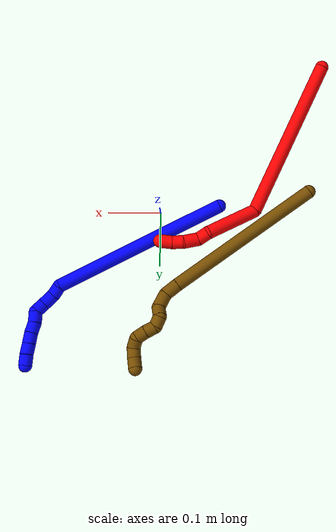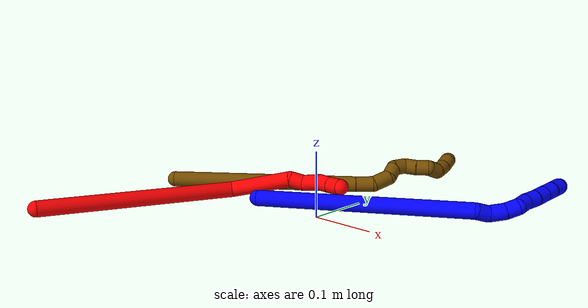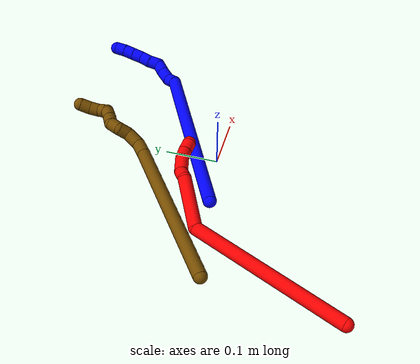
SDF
<sdf version="1.7">
 <world name="default">
  <model name="1">
   <static>0</static>
   <link name="1">
    <collision name="collision-cylinder-e_1_1_4">
     <pose>0.131686 0.093437 -0.040959 -1.98393 0.911658 -1.28727</pose>
     <geometry><cylinder><radius>0.0125</radius><length>0.333163</length></cylinder></geometry>
     <surface>
      <friction><ode><mu>1.16</mu><mu2>1.16</mu2><slip1>0</slip1><slip2>0</slip2></ode></friction>
      <contact><ode><kp>1e+06</kp><kd>1</kd><max_vel>0</max_vel><min_depth>0.001</min_depth></ode></contact>
     </surface>
    </collision>
    <visual name="visual-cylinder-e_1_1_4">
     <pose>0.131686 0.093437 -0.040959 -1.98393 0.911658 -1.28727</pose>
     <geometry><cylinder><radius>0.0125</radius><length>0.333163</length></cylinder></geometry>
     <material><ambient>0 0 1 1</ambient></material>
    </visual>
    <collision name="collision-cylinder-e_2_4_5">
     <pose>0.266919 0.196053 -0.085829 -1.9736 0.34158 -0.510544</pose>
     <geometry><cylinder><radius>0.0125</radius><length>0.021177</length></cylinder></geometry>
     <surface>
      <friction><ode><mu>1.16</mu><mu2>1.16</mu2><slip1>0</slip1><slip2>0</slip2></ode></friction>
      <contact><ode><kp>1e+06</kp><kd>1</kd><max_vel>0</max_vel><min_depth>0.001</min_depth></ode></contact>
     </surface>
    </collision>
    <visual name="visual-cylinder-e_2_4_5">
     <pose>0.266919 0.196053 -0.085829 -1.9736 0.34158 -0.510544</pose>
     <geometry><cylinder><radius>0.0125</radius><length>0.021177</length></cylinder></geometry>
     <material><ambient>0 0 1 1</ambient></material>
    </visual>
    <collision name="collision-cylinder-e_3_5_6">
     <pose>0.278493 0.215205 -0.090409 -1.63775 0.676567 -0.719621</pose>
     <geometry><cylinder><radius>0.0125</radius><length>0.025641</length></cylinder></geometry>
     <surface>
      <friction><ode><mu>1.16</mu><mu2>1.16</mu2><slip1>0</slip1><slip2>0</slip2></ode></friction>
      <contact><ode><kp>1e+06</kp><kd>1</kd><max_vel>0</max_vel><min_depth>0.001</min_depth></ode></contact>
     </surface>
    </collision>
    <visual name="visual-cylinder-e_3_5_6">
     <pose>0.278493 0.215205 -0.090409 -1.63775 0.676567 -0.719621</pose>
     <geometry><cylinder><radius>0.0125</radius><length>0.025641</length></cylinder></geometry>
     <material><ambient>0 0 1 1</ambient></material>
    </visual>
    <collision name="collision-cylinder-e_4_6_7">
     <pose>0.293274 0.232394 -0.089522 -1.35852 0.741122 -0.607951</pose>
     <geometry><cylinder><radius>0.0125</radius><length>0.020011</length></cylinder></geometry>
     <surface>
      <friction><ode><mu>1.16</mu><mu2>1.16</mu2><slip1>0</slip1><slip2>0</slip2></ode></friction>
      <contact><ode><kp>1e+06</kp><kd>1</kd><max_vel>0</max_vel><min_depth>0.001</min_depth></ode></contact>
     </surface>
    </collision>
    <visual name="visual-cylinder-e_4_6_7">
     <pose>0.293274 0.232394 -0.089522 -1.35852 0.741122 -0.607951</pose>
     <geometry><cylinder><radius>0.0125</radius><length>0.020011</length></cylinder></geometry>
     <material><ambient>0 0 1 1</ambient></material>
    </visual>
    <collision name="collision-cylinder-e_5_7_8">
     <pose>0.2998 0.249372 -0.085795 -1.35187 -0.022868 0.01834</pose>
     <geometry><cylinder><radius>0.0125</radius><length>0.020008</length></cylinder></geometry>
     <surface>
      <friction><ode><mu>1.16</mu><mu2>1.16</mu2><slip1>0</slip1><slip2>0</slip2></ode></friction>
      <contact><ode><kp>1e+06</kp><kd>1</kd><max_vel>0</max_vel><min_depth>0.001</min_depth></ode></contact>
     </surface>
    </collision>
    <visual name="visual-cylinder-e_5_7_8">
     <pose>0.2998 0.249372 -0.085795 -1.35187 -0.022868 0.01834</pose>
     <geometry><cylinder><radius>0.0125</radius><length>0.020008</length></cylinder></geometry>
     <material><ambient>0 0 1 1</ambient></material>
    </visual>
    <collision name="collision-cylinder-e_6_8_9">
     <pose>0.301806 0.268829 -0.082603 -1.46599 0.225309 -0.203013</pose>
     <geometry><cylinder><radius>0.0125</radius><length>0.02</length></cylinder></geometry>
     <surface>
      <friction><ode><mu>1.16</mu><mu2>1.16</mu2><slip1>0</slip1><slip2>0</slip2></ode></friction>
      <contact><ode><kp>1e+06</kp><kd>1</kd><max_vel>0</max_vel><min_depth>0.001</min_depth></ode></contact>
     </surface>
    </collision>
    <visual name="visual-cylinder-e_6_8_9">
     <pose>0.301806 0.268829 -0.082603 -1.46599 0.225309 -0.203013</pose>
     <geometry><cylinder><radius>0.0125</radius><length>0.02</length></cylinder></geometry>
     <material><ambient>0 0 1 1</ambient></material>
    </visual>
    <collision name="collision-cylinder-e_7_9_10">
     <pose>0.305004 0.28834 -0.079938 -1.40471 0.096594 -0.081768</pose>
     <geometry><cylinder><radius>0.0125</radius><length>0.02</length></cylinder></geometry>
     <surface>
      <friction><ode><mu>1.16</mu><mu2>1.16</mu2><slip1>0</slip1><slip2>0</slip2></ode></friction>
      <contact><ode><kp>1e+06</kp><kd>1</kd><max_vel>0</max_vel><min_depth>0.001</min_depth></ode></contact>
     </surface>
    </collision>
    <visual name="visual-cylinder-e_7_9_10">
     <pose>0.305004 0.28834 -0.079938 -1.40471 0.096594 -0.081768</pose>
     <geometry><cylinder><radius>0.0125</radius><length>0.02</length></cylinder></geometry>
     <material><ambient>0 0 1 1</ambient></material>
    </visual>
    <collision name="collision-cylinder-e_8_10_11">
     <pose>0.307143 0.307946 -0.076622 -1.40182 0.117688 -0.099343</pose>
     <geometry><cylinder><radius>0.0125</radius><length>0.02</length></cylinder></geometry>
     <surface>
      <friction><ode><mu>1.16</mu><mu2>1.16</mu2><slip1>0</slip1><slip2>0</slip2></ode></friction>
      <contact><ode><kp>1e+06</kp><kd>1</kd><max_vel>0</max_vel><min_depth>0.001</min_depth></ode></contact>
     </surface>
    </collision>
    <visual name="visual-cylinder-e_8_10_11">
     <pose>0.307143 0.307946 -0.076622 -1.40182 0.117688 -0.099343</pose>
     <geometry><cylinder><radius>0.0125</radius><length>0.02</length></cylinder></geometry>
     <material><ambient>0 0 1 1</ambient></material>
    </visual>
    <collision name="collision-cylinder-e_9_11_2">
     <pose>0.308352 0.32765 -0.073655 -1.44071 0.003524 -0.003093</pose>
     <geometry><cylinder><radius>0.0125</radius><length>0.02</length></cylinder></geometry>
     <surface>
      <friction><ode><mu>1.16</mu><mu2>1.16</mu2><slip1>0</slip1><slip2>0</slip2></ode></friction>
      <contact><ode><kp>1e+06</kp><kd>1</kd><max_vel>0</max_vel><min_depth>0.001</min_depth></ode></contact>
     </surface>
    </collision>
    <visual name="visual-cylinder-e_9_11_2">
     <pose>0.308352 0.32765 -0.073655 -1.44071 0.003524 -0.003093</pose>
     <geometry><cylinder><radius>0.0125</radius><length>0.02</length></cylinder></geometry>
     <material><ambient>0 0 1 1</ambient></material>
    </visual>
    <collision name="collision-sphere-2">
     <pose>0.308388 0.337566 -0.072358 0 -0 0</pose>
     <geometry><sphere><radius>0.0125</radius></sphere></geometry>
     <surface>
      <friction><ode><mu>1.16</mu><mu2>1.16</mu2><slip1>0</slip1><slip2>0</slip2></ode></friction>
      <contact><ode><kp>1e+06</kp><kd>1</kd><max_vel>0</max_vel><min_depth>0.001</min_depth></ode></contact>
     </surface>
    </collision>
    <visual name="visual-sphere-2">
     <pose>0.308388 0.337566 -0.072358 0 -0 0</pose>
     <geometry><sphere><radius>0.0125</radius></sphere></geometry>
     <material><ambient>0 0 1 1</ambient></material>
    </visual>
    <collision name="collision-sphere-11">
     <pose>0.308317 0.317735 -0.074952 0 -0 0</pose>
     <geometry><sphere><radius>0.0125</radius></sphere></geometry>
     <surface>
      <friction><ode><mu>1.16</mu><mu2>1.16</mu2><slip1>0</slip1><slip2>0</slip2></ode></friction>
      <contact><ode><kp>1e+06</kp><kd>1</kd><max_vel>0</max_vel><min_depth>0.001</min_depth></ode></contact>
     </surface>
    </collision>
    <visual name="visual-sphere-11">
     <pose>0.308317 0.317735 -0.074952 0 -0 0</pose>
     <geometry><sphere><radius>0.0125</radius></sphere></geometry>
     <material><ambient>0 0 1 1</ambient></material>
    </visual>
    <collision name="collision-sphere-10">
     <pose>0.305969 0.298156 -0.078292 0 -0 0</pose>
     <geometry><sphere><radius>0.0125</radius></sphere></geometry>
     <surface>
      <friction><ode><mu>1.16</mu><mu2>1.16</mu2><slip1>0</slip1><slip2>0</slip2></ode></friction>
      <contact><ode><kp>1e+06</kp><kd>1</kd><max_vel>0</max_vel><min_depth>0.001</min_depth></ode></contact>
     </surface>
    </collision>
    <visual name="visual-sphere-10">
     <pose>0.305969 0.298156 -0.078292 0 -0 0</pose>
     <geometry><sphere><radius>0.0125</radius></sphere></geometry>
     <material><ambient>0 0 1 1</ambient></material>
    </visual>
    <collision name="collision-sphere-9">
     <pose>0.30404 0.278523 -0.081583 0 -0 0</pose>
     <geometry><sphere><radius>0.0125</radius></sphere></geometry>
     <surface>
      <friction><ode><mu>1.16</mu><mu2>1.16</mu2><slip1>0</slip1><slip2>0</slip2></ode></friction>
      <contact><ode><kp>1e+06</kp><kd>1</kd><max_vel>0</max_vel><min_depth>0.001</min_depth></ode></contact>
     </surface>
    </collision>
    <visual name="visual-sphere-9">
     <pose>0.30404 0.278523 -0.081583 0 -0 0</pose>
     <geometry><sphere><radius>0.0125</radius></sphere></geometry>
     <material><ambient>0 0 1 1</ambient></material>
    </visual>
    <collision name="collision-sphere-4">
     <pose>0.263372 0.186875 -0.081918 0 -0 0</pose>
     <geometry><sphere><radius>0.0125</radius></sphere></geometry>
     <surface>
      <friction><ode><mu>1.16</mu><mu2>1.16</mu2><slip1>0</slip1><slip2>0</slip2></ode></friction>
      <contact><ode><kp>1e+06</kp><kd>1</kd><max_vel>0</max_vel><min_depth>0.001</min_depth></ode></contact>
     </surface>
    </collision>
    <visual name="visual-sphere-4">
     <pose>0.263372 0.186875 -0.081918 0 -0 0</pose>
     <geometry><sphere><radius>0.0125</radius></sphere></geometry>
     <material><ambient>0 0 1 1</ambient></material>
    </visual>
    <collision name="collision-sphere-1">
     <geometry><sphere><radius>0.0125</radius></sphere></geometry>
     <surface>
      <friction><ode><mu>1.16</mu><mu2>1.16</mu2><slip1>0</slip1><slip2>0</slip2></ode></friction>
      <contact><ode><kp>1e+06</kp><kd>1</kd><max_vel>0</max_vel><min_depth>0.001</min_depth></ode></contact>
     </surface>
    </collision>
    <visual name="visual-sphere-1">
     <geometry><sphere><radius>0.0125</radius></sphere></geometry>
     <material><ambient>0 0 1 1</ambient></material>
    </visual>
    <collision name="collision-sphere-8">
     <pose>0.299572 0.259135 -0.083623 0 -0 0</pose>
     <geometry><sphere><radius>0.0125</radius></sphere></geometry>
     <surface>
      <friction><ode><mu>1.16</mu><mu2>1.16</mu2><slip1>0</slip1><slip2>0</slip2></ode></friction>
      <contact><ode><kp>1e+06</kp><kd>1</kd><max_vel>0</max_vel><min_depth>0.001</min_depth></ode></contact>
     </surface>
    </collision>
    <visual name="visual-sphere-8">
     <pose>0.299572 0.259135 -0.083623 0 -0 0</pose>
     <geometry><sphere><radius>0.0125</radius></sphere></geometry>
     <material><ambient>0 0 1 1</ambient></material>
    </visual>
    <collision name="collision-sphere-5">
     <pose>0.270466 0.205231 -0.08974 0 -0 0</pose>
     <geometry><sphere><radius>0.0125</radius></sphere></geometry>
     <surface>
      <friction><ode><mu>1.16</mu><mu2>1.16</mu2><slip1>0</slip1><slip2>0</slip2></ode></friction>
      <contact><ode><kp>1e+06</kp><kd>1</kd><max_vel>0</max_vel><min_depth>0.001</min_depth></ode></contact>
     </surface>
    </collision>
    <visual name="visual-sphere-5">
     <pose>0.270466 0.205231 -0.08974 0 -0 0</pose>
     <geometry><sphere><radius>0.0125</radius></sphere></geometry>
     <material><ambient>0 0 1 1</ambient></material>
    </visual>
    <collision name="collision-sphere-6">
     <pose>0.28652 0.225179 -0.091077 0 -0 0</pose>
     <geometry><sphere><radius>0.0125</radius></sphere></geometry>
     <surface>
      <friction><ode><mu>1.16</mu><mu2>1.16</mu2><slip1>0</slip1><slip2>0</slip2></ode></friction>
      <contact><ode><kp>1e+06</kp><kd>1</kd><max_vel>0</max_vel><min_depth>0.001</min_depth></ode></contact>
     </surface>
    </collision>
    <visual name="visual-sphere-6">
     <pose>0.28652 0.225179 -0.091077 0 -0 0</pose>
     <geometry><sphere><radius>0.0125</radius></sphere></geometry>
     <material><ambient>0 0 1 1</ambient></material>
    </visual>
    <collision name="collision-sphere-7">
     <pose>0.300029 0.239609 -0.087967 0 -0 0</pose>
     <geometry><sphere><radius>0.0125</radius></sphere></geometry>
     <surface>
      <friction><ode><mu>1.16</mu><mu2>1.16</mu2><slip1>0</slip1><slip2>0</slip2></ode></friction>
      <contact><ode><kp>1e+06</kp><kd>1</kd><max_vel>0</max_vel><min_depth>0.001</min_depth></ode></contact>
     </surface>
    </collision>
    <visual name="visual-sphere-7">
     <pose>0.300029 0.239609 -0.087967 0 -0 0</pose>
     <geometry><sphere><radius>0.0125</radius></sphere></geometry>
     <material><ambient>0 0 1 1</ambient></material>
    </visual>
    <inertial>
     <pose>0.185959 0.14859 -0.055092 0 -0 0</pose>
     <mass>0.5</mass>
     <inertia>
      <ixx>-0.001258</ixx>
      <ixy>0</ixy>
      <ixz>0</ixz>
      <iyy>1e-05</iyy>
      <iyz>0</iyz>
      <izz>-0.004203</izz>
     </inertia>
    </inertial>
   </link>
   <pose>-0.109823 -0.014762 0.011486 -0.044342 -0.350006 -0.099539</pose>
  </model>
  <model name="2">
   <static>0</static>
   <link name="2">
    <collision name="collision-cylinder-e_1_1_4">
     <pose>0.009948 -0.061134 -0.138856 2.72686 0.065473 0.308833</pose>
     <geometry><cylinder><radius>0.0125</radius><length>0.304088</length></cylinder></geometry>
     <surface>
      <friction><ode><mu>1.16</mu><mu2>1.16</mu2><slip1>0</slip1><slip2>0</slip2></ode></friction>
      <contact><ode><kp>1e+06</kp><kd>1</kd><max_vel>0</max_vel><min_depth>0.001</min_depth></ode></contact>
     </surface>
    </collision>
    <visual name="visual-cylinder-e_1_1_4">
     <pose>0.009948 -0.061134 -0.138856 2.72686 0.065473 0.308833</pose>
     <geometry><cylinder><radius>0.0125</radius><length>0.304088</length></cylinder></geometry>
     <material><ambient>1 0 0 1</ambient></material>
    </visual>
    <collision name="collision-cylinder-e_2_4_5">
     <pose>0.03818 -0.110746 -0.323405 -2.89459 0.370146 -1.97062</pose>
     <geometry><cylinder><radius>0.0125</radius><length>0.101091</length></cylinder></geometry>
     <surface>
      <friction><ode><mu>1.16</mu><mu2>1.16</mu2><slip1>0</slip1><slip2>0</slip2></ode></friction>
      <contact><ode><kp>1e+06</kp><kd>1</kd><max_vel>0</max_vel><min_depth>0.001</min_depth></ode></contact>
     </surface>
    </collision>
    <visual name="visual-cylinder-e_2_4_5">
     <pose>0.03818 -0.110746 -0.323405 -2.89459 0.370146 -1.97062</pose>
     <geometry><cylinder><radius>0.0125</radius><length>0.101091</length></cylinder></geometry>
     <material><ambient>1 0 0 1</ambient></material>
    </visual>
    <collision name="collision-cylinder-e_3_5_6">
     <pose>0.063192 -0.10125 -0.377853 2.91427 0.642512 2.4807</pose>
     <geometry><cylinder><radius>0.0125</radius><length>0.022451</length></cylinder></geometry>
     <surface>
      <friction><ode><mu>1.16</mu><mu2>1.16</mu2><slip1>0</slip1><slip2>0</slip2></ode></friction>
      <contact><ode><kp>1e+06</kp><kd>1</kd><max_vel>0</max_vel><min_depth>0.001</min_depth></ode></contact>
     </surface>
    </collision>
    <visual name="visual-cylinder-e_3_5_6">
     <pose>0.063192 -0.10125 -0.377853 2.91427 0.642512 2.4807</pose>
     <geometry><cylinder><radius>0.0125</radius><length>0.022451</length></cylinder></geometry>
     <material><ambient>1 0 0 1</ambient></material>
    </visual>
    <collision name="collision-cylinder-e_4_6_7">
     <pose>0.077637 -0.097899 -0.397832 -2.6948 0.555217 -1.79547</pose>
     <geometry><cylinder><radius>0.0125</radius><length>0.029288</length></cylinder></geometry>
     <surface>
      <friction><ode><mu>1.16</mu><mu2>1.16</mu2><slip1>0</slip1><slip2>0</slip2></ode></friction>
      <contact><ode><kp>1e+06</kp><kd>1</kd><max_vel>0</max_vel><min_depth>0.001</min_depth></ode></contact>
     </surface>
    </collision>
    <visual name="visual-cylinder-e_4_6_7">
     <pose>0.077637 -0.097899 -0.397832 -2.6948 0.555217 -1.79547</pose>
     <geometry><cylinder><radius>0.0125</radius><length>0.029288</length></cylinder></geometry>
     <material><ambient>1 0 0 1</ambient></material>
    </visual>
    <collision name="collision-cylinder-e_5_7_8">
     <pose>0.093059 -0.089214 -0.414996 -2.6336 0.847512 -2.09717</pose>
     <geometry><cylinder><radius>0.0125</radius><length>0.020548</length></cylinder></geometry>
     <surface>
      <friction><ode><mu>1.16</mu><mu2>1.16</mu2><slip1>0</slip1><slip2>0</slip2></ode></friction>
      <contact><ode><kp>1e+06</kp><kd>1</kd><max_vel>0</max_vel><min_depth>0.001</min_depth></ode></contact>
     </surface>
    </collision>
    <visual name="visual-cylinder-e_5_7_8">
     <pose>0.093059 -0.089214 -0.414996 -2.6336 0.847512 -2.09717</pose>
     <geometry><cylinder><radius>0.0125</radius><length>0.020548</length></cylinder></geometry>
     <material><ambient>1 0 0 1</ambient></material>
    </visual>
    <collision name="collision-cylinder-e_6_8_2">
     <pose>0.108799 -0.080595 -0.426778 -2.40366 0.794465 -1.65227</pose>
     <geometry><cylinder><radius>0.0125</radius><length>0.022533</length></cylinder></geometry>
     <surface>
      <friction><ode><mu>1.16</mu><mu2>1.16</mu2><slip1>0</slip1><slip2>0</slip2></ode></friction>
      <contact><ode><kp>1e+06</kp><kd>1</kd><max_vel>0</max_vel><min_depth>0.001</min_depth></ode></contact>
     </surface>
    </collision>
    <visual name="visual-cylinder-e_6_8_2">
     <pose>0.108799 -0.080595 -0.426778 -2.40366 0.794465 -1.65227</pose>
     <geometry><cylinder><radius>0.0125</radius><length>0.022533</length></cylinder></geometry>
     <material><ambient>1 0 0 1</ambient></material>
    </visual>
    <collision name="collision-sphere-2">
     <pose>0.116838 -0.075285 -0.432618 0 -0 0</pose>
     <geometry><sphere><radius>0.0125</radius></sphere></geometry>
     <surface>
      <friction><ode><mu>1.16</mu><mu2>1.16</mu2><slip1>0</slip1><slip2>0</slip2></ode></friction>
      <contact><ode><kp>1e+06</kp><kd>1</kd><max_vel>0</max_vel><min_depth>0.001</min_depth></ode></contact>
     </surface>
    </collision>
    <visual name="visual-sphere-2">
     <pose>0.116838 -0.075285 -0.432618 0 -0 0</pose>
     <geometry><sphere><radius>0.0125</radius></sphere></geometry>
     <material><ambient>1 0 0 1</ambient></material>
    </visual>
    <collision name="collision-sphere-4">
     <pose>0.019895 -0.122267 -0.277713 0 -0 0</pose>
     <geometry><sphere><radius>0.0125</radius></sphere></geometry>
     <surface>
      <friction><ode><mu>1.16</mu><mu2>1.16</mu2><slip1>0</slip1><slip2>0</slip2></ode></friction>
      <contact><ode><kp>1e+06</kp><kd>1</kd><max_vel>0</max_vel><min_depth>0.001</min_depth></ode></contact>
     </surface>
    </collision>
    <visual name="visual-sphere-4">
     <pose>0.019895 -0.122267 -0.277713 0 -0 0</pose>
     <geometry><sphere><radius>0.0125</radius></sphere></geometry>
     <material><ambient>1 0 0 1</ambient></material>
    </visual>
    <collision name="collision-sphere-1">
     <geometry><sphere><radius>0.0125</radius></sphere></geometry>
     <surface>
      <friction><ode><mu>1.16</mu><mu2>1.16</mu2><slip1>0</slip1><slip2>0</slip2></ode></friction>
      <contact><ode><kp>1e+06</kp><kd>1</kd><max_vel>0</max_vel><min_depth>0.001</min_depth></ode></contact>
     </surface>
    </collision>
    <visual name="visual-sphere-1">
     <geometry><sphere><radius>0.0125</radius></sphere></geometry>
     <material><ambient>1 0 0 1</ambient></material>
    </visual>
    <collision name="collision-sphere-8">
     <pose>0.10076 -0.085906 -0.420937 0 -0 0</pose>
     <geometry><sphere><radius>0.0125</radius></sphere></geometry>
     <surface>
      <friction><ode><mu>1.16</mu><mu2>1.16</mu2><slip1>0</slip1><slip2>0</slip2></ode></friction>
      <contact><ode><kp>1e+06</kp><kd>1</kd><max_vel>0</max_vel><min_depth>0.001</min_depth></ode></contact>
     </surface>
    </collision>
    <visual name="visual-sphere-8">
     <pose>0.10076 -0.085906 -0.420937 0 -0 0</pose>
     <geometry><sphere><radius>0.0125</radius></sphere></geometry>
     <material><ambient>1 0 0 1</ambient></material>
    </visual>
    <collision name="collision-sphere-5">
     <pose>0.056465 -0.099225 -0.369097 0 -0 0</pose>
     <geometry><sphere><radius>0.0125</radius></sphere></geometry>
     <surface>
      <friction><ode><mu>1.16</mu><mu2>1.16</mu2><slip1>0</slip1><slip2>0</slip2></ode></friction>
      <contact><ode><kp>1e+06</kp><kd>1</kd><max_vel>0</max_vel><min_depth>0.001</min_depth></ode></contact>
     </surface>
    </collision>
    <visual name="visual-sphere-5">
     <pose>0.056465 -0.099225 -0.369097 0 -0 0</pose>
     <geometry><sphere><radius>0.0125</radius></sphere></geometry>
     <material><ambient>1 0 0 1</ambient></material>
    </visual>
    <collision name="collision-sphere-6">
     <pose>0.069918 -0.103276 -0.386609 0 -0 0</pose>
     <geometry><sphere><radius>0.0125</radius></sphere></geometry>
     <surface>
      <friction><ode><mu>1.16</mu><mu2>1.16</mu2><slip1>0</slip1><slip2>0</slip2></ode></friction>
      <contact><ode><kp>1e+06</kp><kd>1</kd><max_vel>0</max_vel><min_depth>0.001</min_depth></ode></contact>
     </surface>
    </collision>
    <visual name="visual-sphere-6">
     <pose>0.069918 -0.103276 -0.386609 0 -0 0</pose>
     <geometry><sphere><radius>0.0125</radius></sphere></geometry>
     <material><ambient>1 0 0 1</ambient></material>
    </visual>
    <collision name="collision-sphere-7">
     <pose>0.085357 -0.092522 -0.409054 0 -0 0</pose>
     <geometry><sphere><radius>0.0125</radius></sphere></geometry>
     <surface>
      <friction><ode><mu>1.16</mu><mu2>1.16</mu2><slip1>0</slip1><slip2>0</slip2></ode></friction>
      <contact><ode><kp>1e+06</kp><kd>1</kd><max_vel>0</max_vel><min_depth>0.001</min_depth></ode></contact>
     </surface>
    </collision>
    <visual name="visual-sphere-7">
     <pose>0.085357 -0.092522 -0.409054 0 -0 0</pose>
     <geometry><sphere><radius>0.0125</radius></sphere></geometry>
     <material><ambient>1 0 0 1</ambient></material>
    </visual>
    <inertial>
     <pose>0.029882 -0.07715 -0.226394 0 -0 0</pose>
     <mass>0.5</mass>
     <inertia>
      <ixx>0.002846</ixx>
      <ixy>0</ixy>
      <ixz>0</ixz>
      <iyy>-0.001361</iyy>
      <iyz>0</iyz>
      <izz>0.000698</izz>
     </inertia>
    </inertial>
   </link>
   <pose>-0.302105 -0.284244 0.01348 2.03114 0.689516 -0.345624</pose>
  </model>
  <model name="12">
   <static>0</static>
   <link name="12">
    <collision name="collision-cylinder-e_1_1_4">
     <pose>0.058474 0.122884 0.064781 -1.08565 0.398427 -0.242398</pose>
     <geometry><cylinder><radius>0.0125</radius><length>0.301438</length></cylinder></geometry>
     <surface>
      <friction><ode><mu>1.16</mu><mu2>1.16</mu2><slip1>0</slip1><slip2>0</slip2></ode></friction>
      <contact><ode><kp>1e+06</kp><kd>1</kd><max_vel>0</max_vel><min_depth>0.001</min_depth></ode></contact>
     </surface>
    </collision>
    <visual name="visual-cylinder-e_1_1_4">
     <pose>0.058474 0.122884 0.064781 -1.08565 0.398427 -0.242398</pose>
     <geometry><cylinder><radius>0.0125</radius><length>0.301438</length></cylinder></geometry>
     <material><ambient>0.466667 0.301961 0 1</ambient></material>
    </visual>
    <collision name="collision-cylinder-e_2_4_5">
     <pose>0.123091 0.25699 0.136069 -1.04536 0.442219 -0.257574</pose>
     <geometry><cylinder><radius>0.0125</radius><length>0.028708</length></cylinder></geometry>
     <surface>
      <friction><ode><mu>1.16</mu><mu2>1.16</mu2><slip1>0</slip1><slip2>0</slip2></ode></friction>
      <contact><ode><kp>1e+06</kp><kd>1</kd><max_vel>0</max_vel><min_depth>0.001</min_depth></ode></contact>
     </surface>
    </collision>
    <visual name="visual-cylinder-e_2_4_5">
     <pose>0.123091 0.25699 0.136069 -1.04536 0.442219 -0.257574</pose>
     <geometry><cylinder><radius>0.0125</radius><length>0.028708</length></cylinder></geometry>
     <material><ambient>0.466667 0.301961 0 1</ambient></material>
    </visual>
    <collision name="collision-cylinder-e_3_5_6">
     <pose>0.140122 0.274085 0.150198 -0.656441 0.847074 -0.304665</pose>
     <geometry><cylinder><radius>0.0125</radius><length>0.029059</length></cylinder></geometry>
     <surface>
      <friction><ode><mu>1.16</mu><mu2>1.16</mu2><slip1>0</slip1><slip2>0</slip2></ode></friction>
      <contact><ode><kp>1e+06</kp><kd>1</kd><max_vel>0</max_vel><min_depth>0.001</min_depth></ode></contact>
     </surface>
    </collision>
    <visual name="visual-cylinder-e_3_5_6">
     <pose>0.140122 0.274085 0.150198 -0.656441 0.847074 -0.304665</pose>
     <geometry><cylinder><radius>0.0125</radius><length>0.029059</length></cylinder></geometry>
     <material><ambient>0.466667 0.301961 0 1</ambient></material>
    </visual>
    <collision name="collision-cylinder-e_4_6_7">
     <pose>0.160276 0.277846 0.162027 0.464988 1.10075 0.288563</pose>
     <geometry><cylinder><radius>0.0125</radius><length>0.020788</length></cylinder></geometry>
     <surface>
      <friction><ode><mu>1.16</mu><mu2>1.16</mu2><slip1>0</slip1><slip2>0</slip2></ode></friction>
      <contact><ode><kp>1e+06</kp><kd>1</kd><max_vel>0</max_vel><min_depth>0.001</min_depth></ode></contact>
     </surface>
    </collision>
    <visual name="visual-cylinder-e_4_6_7">
     <pose>0.160276 0.277846 0.162027 0.464988 1.10075 0.288563</pose>
     <geometry><cylinder><radius>0.0125</radius><length>0.020788</length></cylinder></geometry>
     <material><ambient>0.466667 0.301961 0 1</ambient></material>
    </visual>
    <collision name="collision-cylinder-e_5_7_8">
     <pose>0.175225 0.279754 0.173421 -0.509919 0.604142 -0.162073</pose>
     <geometry><cylinder><radius>0.0125</radius><length>0.020007</length></cylinder></geometry>
     <surface>
      <friction><ode><mu>1.16</mu><mu2>1.16</mu2><slip1>0</slip1><slip2>0</slip2></ode></friction>
      <contact><ode><kp>1e+06</kp><kd>1</kd><max_vel>0</max_vel><min_depth>0.001</min_depth></ode></contact>
     </surface>
    </collision>
    <visual name="visual-cylinder-e_5_7_8">
     <pose>0.175225 0.279754 0.173421 -0.509919 0.604142 -0.162073</pose>
     <geometry><cylinder><radius>0.0125</radius><length>0.020007</length></cylinder></geometry>
     <material><ambient>0.466667 0.301961 0 1</ambient></material>
    </visual>
    <collision name="collision-cylinder-e_6_8_9">
     <pose>0.183501 0.292717 0.184248 -1.18416 0.262358 -0.177009</pose>
     <geometry><cylinder><radius>0.0125</radius><length>0.02</length></cylinder></geometry>
     <surface>
      <friction><ode><mu>1.16</mu><mu2>1.16</mu2><slip1>0</slip1><slip2>0</slip2></ode></friction>
      <contact><ode><kp>1e+06</kp><kd>1</kd><max_vel>0</max_vel><min_depth>0.001</min_depth></ode></contact>
     </surface>
    </collision>
    <visual name="visual-cylinder-e_6_8_9">
     <pose>0.183501 0.292717 0.184248 -1.18416 0.262358 -0.177009</pose>
     <geometry><cylinder><radius>0.0125</radius><length>0.02</length></cylinder></geometry>
     <material><ambient>0.466667 0.301961 0 1</ambient></material>
    </visual>
    <collision name="collision-cylinder-e_7_9_10">
     <pose>0.189993 0.309976 0.19185 -1.12628 0.40041 -0.254836</pose>
     <geometry><cylinder><radius>0.0125</radius><length>0.02</length></cylinder></geometry>
     <surface>
      <friction><ode><mu>1.16</mu><mu2>1.16</mu2><slip1>0</slip1><slip2>0</slip2></ode></friction>
      <contact><ode><kp>1e+06</kp><kd>1</kd><max_vel>0</max_vel><min_depth>0.001</min_depth></ode></contact>
     </surface>
    </collision>
    <visual name="visual-cylinder-e_7_9_10">
     <pose>0.189993 0.309976 0.19185 -1.12628 0.40041 -0.254836</pose>
     <geometry><cylinder><radius>0.0125</radius><length>0.02</length></cylinder></geometry>
     <material><ambient>0.466667 0.301961 0 1</ambient></material>
    </visual>
    <collision name="collision-cylinder-e_8_10_11">
     <pose>0.195465 0.321682 0.205085 -0.350613 0.158039 -0.028049</pose>
     <geometry><cylinder><radius>0.0125</radius><length>0.02</length></cylinder></geometry>
     <surface>
      <friction><ode><mu>1.16</mu><mu2>1.16</mu2><slip1>0</slip1><slip2>0</slip2></ode></friction>
      <contact><ode><kp>1e+06</kp><kd>1</kd><max_vel>0</max_vel><min_depth>0.001</min_depth></ode></contact>
     </surface>
    </collision>
    <visual name="visual-cylinder-e_8_10_11">
     <pose>0.195465 0.321682 0.205085 -0.350613 0.158039 -0.028049</pose>
     <geometry><cylinder><radius>0.0125</radius><length>0.02</length></cylinder></geometry>
     <material><ambient>0.466667 0.301961 0 1</ambient></material>
    </visual>
    <collision name="collision-cylinder-e_9_11_12">
     <pose>0.203583 0.32421 0.221871 0.114489 0.713419 0.042705</pose>
     <geometry><cylinder><radius>0.0125</radius><length>0.02</length></cylinder></geometry>
     <surface>
      <friction><ode><mu>1.16</mu><mu2>1.16</mu2><slip1>0</slip1><slip2>0</slip2></ode></friction>
      <contact><ode><kp>1e+06</kp><kd>1</kd><max_vel>0</max_vel><min_depth>0.001</min_depth></ode></contact>
     </surface>
    </collision>
    <visual name="visual-cylinder-e_9_11_12">
     <pose>0.203583 0.32421 0.221871 0.114489 0.713419 0.042705</pose>
     <geometry><cylinder><radius>0.0125</radius><length>0.02</length></cylinder></geometry>
     <material><ambient>0.466667 0.301961 0 1</ambient></material>
    </visual>
    <collision name="collision-cylinder-e_10_12_2">
     <pose>0.217928 0.321768 0.235437 0.254977 0.894772 0.122859</pose>
     <geometry><cylinder><radius>0.0125</radius><length>0.02</length></cylinder></geometry>
     <surface>
      <friction><ode><mu>1.16</mu><mu2>1.16</mu2><slip1>0</slip1><slip2>0</slip2></ode></friction>
      <contact><ode><kp>1e+06</kp><kd>1</kd><max_vel>0</max_vel><min_depth>0.001</min_depth></ode></contact>
     </surface>
    </collision>
    <visual name="visual-cylinder-e_10_12_2">
     <pose>0.217928 0.321768 0.235437 0.254977 0.894772 0.122859</pose>
     <geometry><cylinder><radius>0.0125</radius><length>0.02</length></cylinder></geometry>
     <material><ambient>0.466667 0.301961 0 1</ambient></material>
    </visual>
    <collision name="collision-sphere-2">
     <pose>0.225728 0.32019 0.241492 0 -0 0</pose>
     <geometry><sphere><radius>0.0125</radius></sphere></geometry>
     <surface>
      <friction><ode><mu>1.16</mu><mu2>1.16</mu2><slip1>0</slip1><slip2>0</slip2></ode></friction>
      <contact><ode><kp>1e+06</kp><kd>1</kd><max_vel>0</max_vel><min_depth>0.001</min_depth></ode></contact>
     </surface>
    </collision>
    <visual name="visual-sphere-2">
     <pose>0.225728 0.32019 0.241492 0 -0 0</pose>
     <geometry><sphere><radius>0.0125</radius></sphere></geometry>
     <material><ambient>0.466667 0.301961 0 1</ambient></material>
    </visual>
    <collision name="collision-sphere-12">
     <pose>0.210127 0.323347 0.229383 0 -0 0</pose>
     <geometry><sphere><radius>0.0125</radius></sphere></geometry>
     <surface>
      <friction><ode><mu>1.16</mu><mu2>1.16</mu2><slip1>0</slip1><slip2>0</slip2></ode></friction>
      <contact><ode><kp>1e+06</kp><kd>1</kd><max_vel>0</max_vel><min_depth>0.001</min_depth></ode></contact>
     </surface>
    </collision>
    <visual name="visual-sphere-12">
     <pose>0.210127 0.323347 0.229383 0 -0 0</pose>
     <geometry><sphere><radius>0.0125</radius></sphere></geometry>
     <material><ambient>0.466667 0.301961 0 1</ambient></material>
    </visual>
    <collision name="collision-sphere-11">
     <pose>0.197039 0.325074 0.214359 0 -0 0</pose>
     <geometry><sphere><radius>0.0125</radius></sphere></geometry>
     <surface>
      <friction><ode><mu>1.16</mu><mu2>1.16</mu2><slip1>0</slip1><slip2>0</slip2></ode></friction>
      <contact><ode><kp>1e+06</kp><kd>1</kd><max_vel>0</max_vel><min_depth>0.001</min_depth></ode></contact>
     </surface>
    </collision>
    <visual name="visual-sphere-11">
     <pose>0.197039 0.325074 0.214359 0 -0 0</pose>
     <geometry><sphere><radius>0.0125</radius></sphere></geometry>
     <material><ambient>0.466667 0.301961 0 1</ambient></material>
    </visual>
    <collision name="collision-sphere-10">
     <pose>0.193891 0.31829 0.19581 0 -0 0</pose>
     <geometry><sphere><radius>0.0125</radius></sphere></geometry>
     <surface>
      <friction><ode><mu>1.16</mu><mu2>1.16</mu2><slip1>0</slip1><slip2>0</slip2></ode></friction>
      <contact><ode><kp>1e+06</kp><kd>1</kd><max_vel>0</max_vel><min_depth>0.001</min_depth></ode></contact>
     </surface>
    </collision>
    <visual name="visual-sphere-10">
     <pose>0.193891 0.31829 0.19581 0 -0 0</pose>
     <geometry><sphere><radius>0.0125</radius></sphere></geometry>
     <material><ambient>0.466667 0.301961 0 1</ambient></material>
    </visual>
    <collision name="collision-sphere-9">
     <pose>0.186095 0.301662 0.18789 0 -0 0</pose>
     <geometry><sphere><radius>0.0125</radius></sphere></geometry>
     <surface>
      <friction><ode><mu>1.16</mu><mu2>1.16</mu2><slip1>0</slip1><slip2>0</slip2></ode></friction>
      <contact><ode><kp>1e+06</kp><kd>1</kd><max_vel>0</max_vel><min_depth>0.001</min_depth></ode></contact>
     </surface>
    </collision>
    <visual name="visual-sphere-9">
     <pose>0.186095 0.301662 0.18789 0 -0 0</pose>
     <geometry><sphere><radius>0.0125</radius></sphere></geometry>
     <material><ambient>0.466667 0.301961 0 1</ambient></material>
    </visual>
    <collision name="collision-sphere-4">
     <pose>0.116948 0.245767 0.129562 0 -0 0</pose>
     <geometry><sphere><radius>0.0125</radius></sphere></geometry>
     <surface>
      <friction><ode><mu>1.16</mu><mu2>1.16</mu2><slip1>0</slip1><slip2>0</slip2></ode></friction>
      <contact><ode><kp>1e+06</kp><kd>1</kd><max_vel>0</max_vel><min_depth>0.001</min_depth></ode></contact>
     </surface>
    </collision>
    <visual name="visual-sphere-4">
     <pose>0.116948 0.245767 0.129562 0 -0 0</pose>
     <geometry><sphere><radius>0.0125</radius></sphere></geometry>
     <material><ambient>0.466667 0.301961 0 1</ambient></material>
    </visual>
    <collision name="collision-sphere-1">
     <geometry><sphere><radius>0.0125</radius></sphere></geometry>
     <surface>
      <friction><ode><mu>1.16</mu><mu2>1.16</mu2><slip1>0</slip1><slip2>0</slip2></ode></friction>
      <contact><ode><kp>1e+06</kp><kd>1</kd><max_vel>0</max_vel><min_depth>0.001</min_depth></ode></contact>
     </surface>
    </collision>
    <visual name="visual-sphere-1">
     <geometry><sphere><radius>0.0125</radius></sphere></geometry>
     <material><ambient>0.466667 0.301961 0 1</ambient></material>
    </visual>
    <collision name="collision-sphere-8">
     <pose>0.180908 0.283772 0.180606 0 -0 0</pose>
     <geometry><sphere><radius>0.0125</radius></sphere></geometry>
     <surface>
      <friction><ode><mu>1.16</mu><mu2>1.16</mu2><slip1>0</slip1><slip2>0</slip2></ode></friction>
      <contact><ode><kp>1e+06</kp><kd>1</kd><max_vel>0</max_vel><min_depth>0.001</min_depth></ode></contact>
     </surface>
    </collision>
    <visual name="visual-sphere-8">
     <pose>0.180908 0.283772 0.180606 0 -0 0</pose>
     <geometry><sphere><radius>0.0125</radius></sphere></geometry>
     <material><ambient>0.466667 0.301961 0 1</ambient></material>
    </visual>
    <collision name="collision-sphere-5">
     <pose>0.129234 0.268213 0.142576 0 -0 0</pose>
     <geometry><sphere><radius>0.0125</radius></sphere></geometry>
     <surface>
      <friction><ode><mu>1.16</mu><mu2>1.16</mu2><slip1>0</slip1><slip2>0</slip2></ode></friction>
      <contact><ode><kp>1e+06</kp><kd>1</kd><max_vel>0</max_vel><min_depth>0.001</min_depth></ode></contact>
     </surface>
    </collision>
    <visual name="visual-sphere-5">
     <pose>0.129234 0.268213 0.142576 0 -0 0</pose>
     <geometry><sphere><radius>0.0125</radius></sphere></geometry>
     <material><ambient>0.466667 0.301961 0 1</ambient></material>
    </visual>
    <collision name="collision-sphere-6">
     <pose>0.151009 0.279957 0.157819 0 -0 0</pose>
     <geometry><sphere><radius>0.0125</radius></sphere></geometry>
     <surface>
      <friction><ode><mu>1.16</mu><mu2>1.16</mu2><slip1>0</slip1><slip2>0</slip2></ode></friction>
      <contact><ode><kp>1e+06</kp><kd>1</kd><max_vel>0</max_vel><min_depth>0.001</min_depth></ode></contact>
     </surface>
    </collision>
    <visual name="visual-sphere-6">
     <pose>0.151009 0.279957 0.157819 0 -0 0</pose>
     <geometry><sphere><radius>0.0125</radius></sphere></geometry>
     <material><ambient>0.466667 0.301961 0 1</ambient></material>
    </visual>
    <collision name="collision-sphere-7">
     <pose>0.169542 0.275735 0.166235 0 -0 0</pose>
     <geometry><sphere><radius>0.0125</radius></sphere></geometry>
     <surface>
      <friction><ode><mu>1.16</mu><mu2>1.16</mu2><slip1>0</slip1><slip2>0</slip2></ode></friction>
      <contact><ode><kp>1e+06</kp><kd>1</kd><max_vel>0</max_vel><min_depth>0.001</min_depth></ode></contact>
     </surface>
    </collision>
    <visual name="visual-sphere-7">
     <pose>0.169542 0.275735 0.166235 0 -0 0</pose>
     <geometry><sphere><radius>0.0125</radius></sphere></geometry>
     <material><ambient>0.466667 0.301961 0 1</ambient></material>
    </visual>
    <inertial>
     <pose>0.103758 0.190328 0.110812 0 -0 0</pose>
     <mass>0.5</mass>
     <inertia>
      <ixx>0.001574</ixx>
      <ixy>0</ixy>
      <ixz>0</ixz>
      <iyy>0.000756</iyy>
      <iyz>0</iyz>
      <izz>-0.002758</izz>
     </inertia>
    </inertial>
   </link>
   <pose>-0.277217 -0.043873 0.017879 -2.88851 -1.01397 1.38148</pose>
  </model>
 </world>
</sdf>
